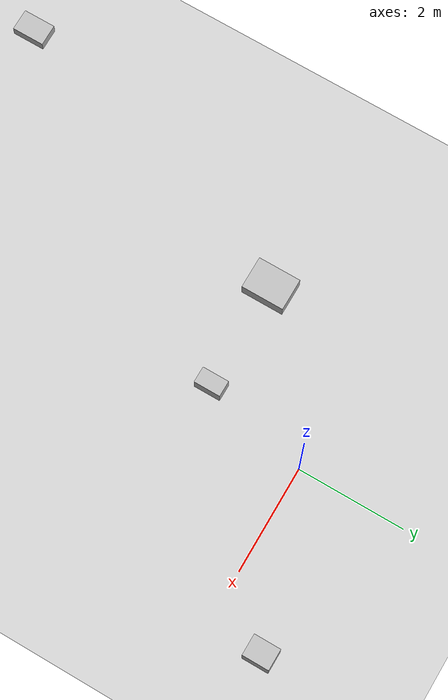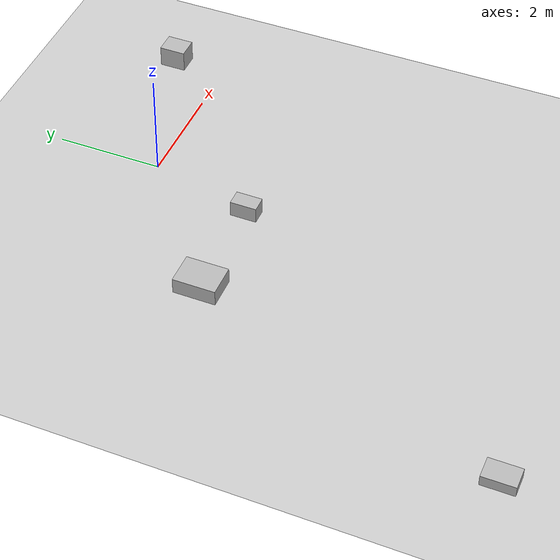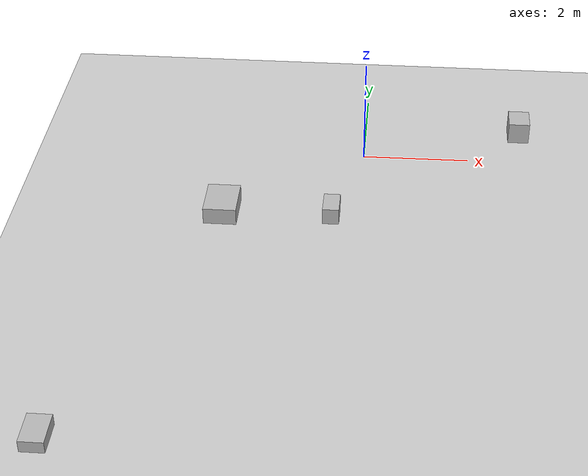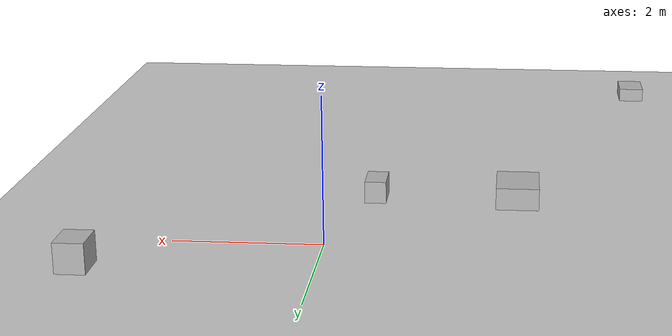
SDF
<sdf version="1.7">
 <world name="default">
  <light name="sun" type="directional">
   <pose>0 0 10 0 -0 0</pose>
   <diffuse>0.8 0.8 0.8 1</diffuse>
   <specular>0.2 0.2 0.2 1</specular>
   <attenuation>
    <range>1000</range>
    <constant>0.9</constant>
    <linear>0.01</linear>
    <quadratic>0.001</quadratic>
   </attenuation>
   <direction>-0.5 0.1 -0.9</direction>
   <spot><inner_angle>0</inner_angle><outer_angle>0</outer_angle><falloff>0</falloff></spot>
  </light>
  <model name="ground_plane">
   <static>1</static>
   <link name="link">
    <collision name="collision">
     <geometry><plane><normal>0 0 1</normal><size>100 100</size></plane></geometry>
     <surface>
      <contact><collide_bitmask>65535</collide_bitmask></contact>
      <friction><ode><mu>100</mu><mu2>50</mu2></ode></friction>
     </surface>
    </collision>
    <visual name="visual">
     <cast_shadows>0</cast_shadows>
     <geometry><plane><normal>0 0 1</normal><size>100 100</size></plane></geometry>
     <material>
      <script><uri>file://media/materials/scripts/gazebo.material</uri><name>Gazebo/Grey</name></script>
     </material>
    </visual>
   </link>
  </model>
  <gravity>0 0 -9.8</gravity>
  <magnetic_field>6e-06 2.3e-05 -4.2e-05</magnetic_field>
  <atmosphere type="adiabatic"/>
  <physics type="ode">
   <max_step_size>0.001</max_step_size>
   <real_time_factor>1</real_time_factor>
   <real_time_update_rate>1000</real_time_update_rate>
  </physics>
  <scene><ambient>0.4 0.4 0.4 1</ambient><background>0.7 0.7 0.7 1</background><shadows>1</shadows></scene>
  <spherical_coordinates>
   <surface_model>EARTH_WGS84</surface_model>
   <latitude_deg>0</latitude_deg>
   <longitude_deg>0</longitude_deg>
   <elevation>0</elevation>
   <heading_deg>0</heading_deg>
  </spherical_coordinates>
  <model name="box1">
   <pose>3 1 0 0 0 0</pose>
   <link name="link">
    <collision name="collision"><geometry><box><size>0.4 0.5 0.8</size></box></geometry></collision>
    <visual name="visual"><geometry><box><size>0.4 0.5 0.8</size></box></geometry></visual>
   </link>
   <plugin name="push_animate_1" filename="libanimated_box_1.so"/>
  </model>
  <model name="box2">
   <pose>-2.5 -2 0 0 0 0</pose>
   <link name="link">
    <collision name="collision"><geometry><box><size>0.6 0.8 0.6</size></box></geometry></collision>
    <visual name="visual"><geometry><box><size>0.6 0.8 0.6</size></box></geometry></visual>
   </link>
   <plugin name="push_animate_2" filename="libanimated_box_2.so"/>
  </model>
  <model name="box3">
   <pose>-0.5 -2 0 0 0 0</pose>
   <link name="link">
    <collision name="collision"><geometry><box><size>0.3 0.5 0.6</size></box></geometry></collision>
    <visual name="visual"><geometry><box><size>0.3 0.5 0.6</size></box></geometry></visual>
   </link>
   <plugin name="push_animate_3" filename="libanimated_box_3.so"/>
  </model>
  <model name="box4">
   <pose>-4.5 -8 0 0 0 0</pose>
   <link name="link">
    <collision name="collision"><geometry><box><size>0.4 0.6 0.4</size></box></geometry></collision>
    <visual name="visual"><geometry><box><size>0.4 0.6 0.4</size></box></geometry></visual>
   </link>
   <plugin name="push_animate_4" filename="libanimated_box_4.so"/>
  </model>
 </world>
</sdf>
